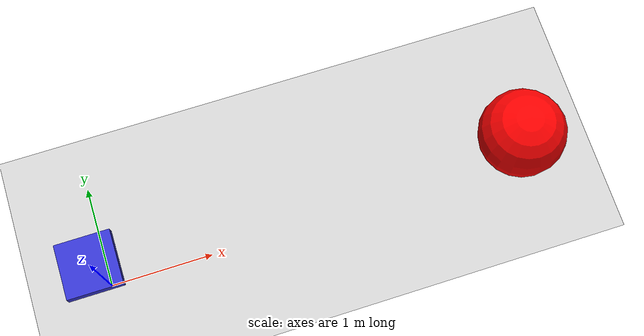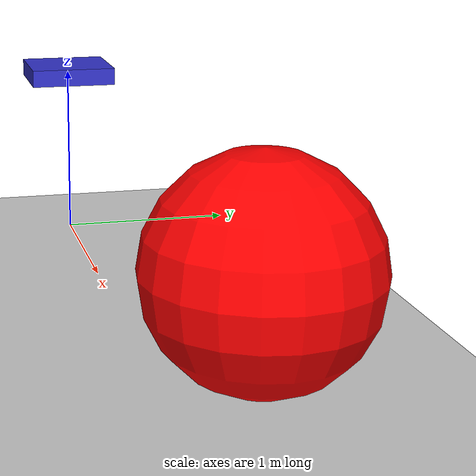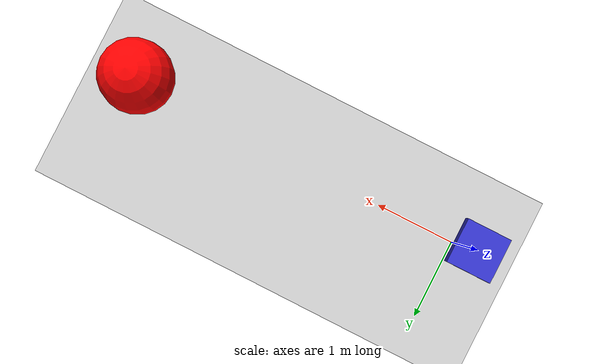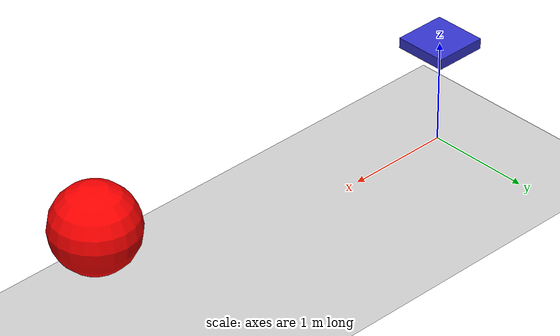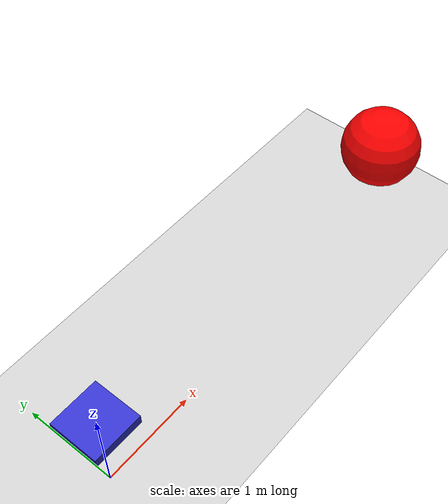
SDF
<?xml version="1.0" ?>
<sdf version="1.9">
<world name="drone_world">

  <physics name="1ms" type="ignored">
    <max_step_size>0.001</max_step_size>
    <real_time_factor>1.0</real_time_factor>
  </physics>

  <plugin filename="gz-sim-physics-system" name="gz::sim::systems::Physics"/>
  <plugin filename="gz-sim-user-commands-system" name="gz::sim::systems::UserCommands"/>
  <plugin filename="gz-sim-scene-broadcaster-system" name="gz::sim::systems::SceneBroadcaster"/>
  <plugin filename="gz-sim-sensors-system" name="gz::sim::systems::Sensors">
    <render_engine>ogre2</render_engine>
  </plugin>

  <light type="directional" name="sun">
    <cast_shadows>true</cast_shadows>
    <pose>0 0 10 0 0 0</pose>
    <diffuse>0.8 0.8 0.8 1</diffuse>
    <direction>-0.5 0.1 -0.9</direction>
  </light>

  <model name="ground_plane">
    <static>true</static>
    <link name="link">
      <collision name="collision">
        <geometry><plane><normal>0 0 1</normal><size>100 100</size></plane></geometry>
      </collision>
      <visual name="visual">
        <geometry><plane><normal>0 0 1</normal><size>100 100</size></plane></geometry>
        <material><ambient>0.8 0.8 0.8 1</ambient><diffuse>0.8 0.8 0.8 1</diffuse></material>
      </visual>
    </link>
  </model>

  <model name="drone">
    <pose>0 0 1 0 0 0</pose>
    <link name="base_link">
      <inertial>
        <mass>1.5</mass>
        <inertia><ixx>0.029</ixx><iyy>0.029</iyy><izz>0.055</izz><ixy>0</ixy><ixz>0</ixz><iyz>0</iyz></inertia>
      </inertial>
      <visual name="body_visual">
        <geometry><box><size>0.5 0.5 0.1</size></box></geometry>
        <material><ambient>0.2 0.2 0.8 1</ambient><diffuse>0.2 0.2 0.8 1</diffuse></material>
      </visual>
      <collision name="body_collision">
        <geometry><box><size>0.5 0.5 0.1</size></box></geometry>
      </collision>
      <sensor name="camera" type="camera">
        <pose>0.26 0 0 0 0 0</pose>
        <update_rate>30</update_rate>
        <camera>
          <horizontal_fov>1.047</horizontal_fov>
          <image><width>640</width><height>480</height><format>R8G8B8</format></image>
          <clip><near>0.1</near><far>50</far></clip>
        </camera>
        <plugin filename="gz-sim-camera-sensor-system" name="gz::sim::systems::CameraSensor"/>
        <topic>/drone/camera</topic>
        <always_on>1</always_on>
      </sensor>
    </link>
    <plugin filename="gz-sim-velocity-control-system" name="gz::sim::systems::VelocityControl">
      <topic>/drone/cmd_vel</topic>
    </plugin>
  </model>

  <!-- cible rouge placee devant le drone -->
  <model name="target">
    <pose>4 0 1 0 0 0</pose>
    <static>true</static>
    <link name="link">
      <visual name="visual">
        <geometry><sphere><radius>0.4</radius></sphere></geometry>
        <material><ambient>1 0 0 1</ambient><diffuse>1 0 0 1</diffuse><emissive>0.4 0 0 1</emissive></material>
      </visual>
      <collision name="collision">
        <geometry><sphere><radius>0.4</radius></sphere></geometry>
      </collision>
    </link>
  </model>

</world>
</sdf>
